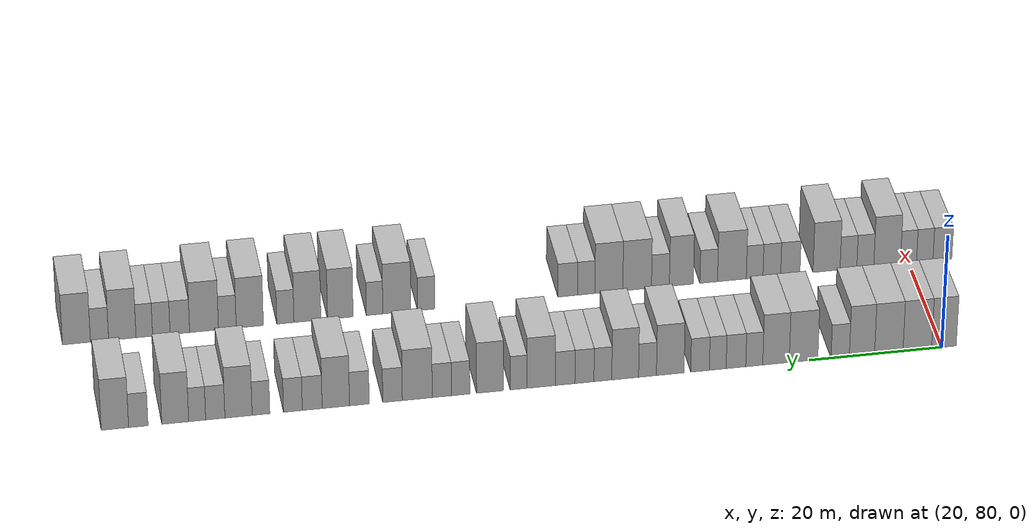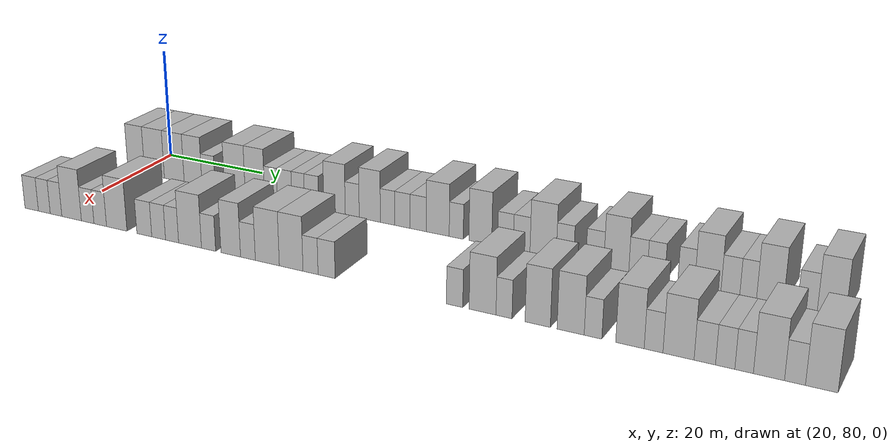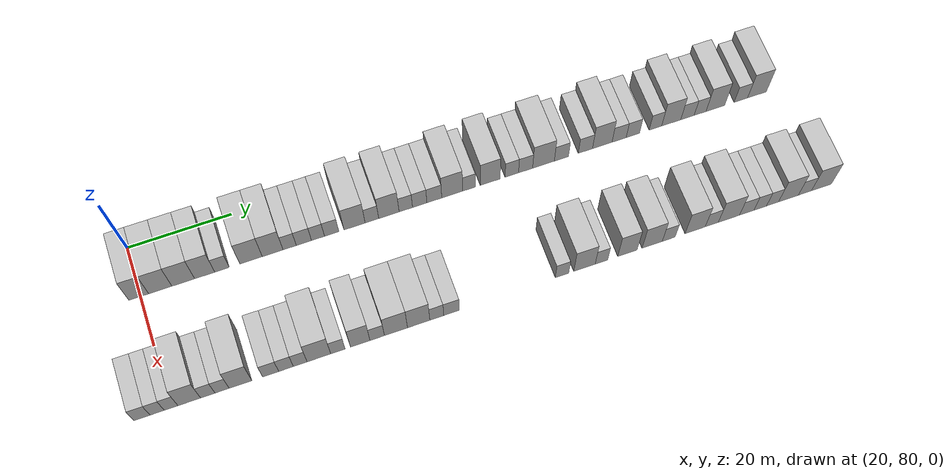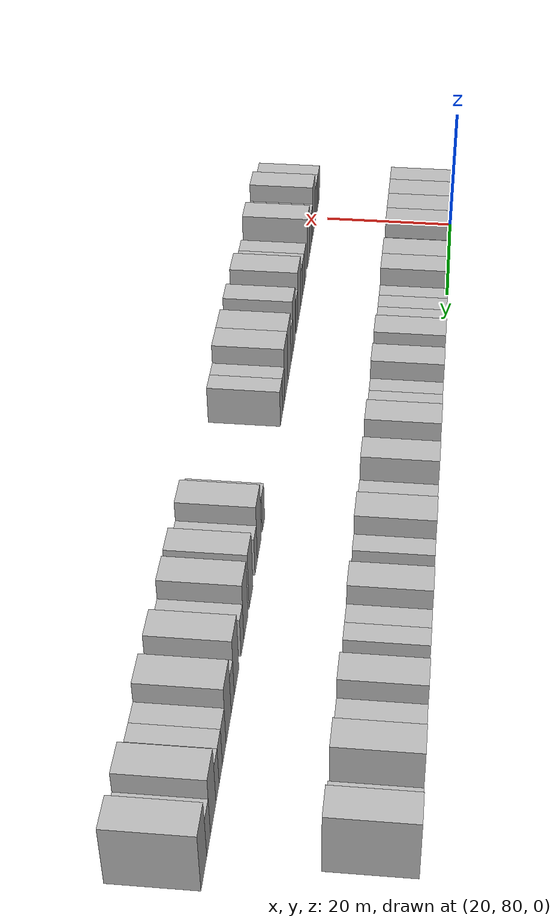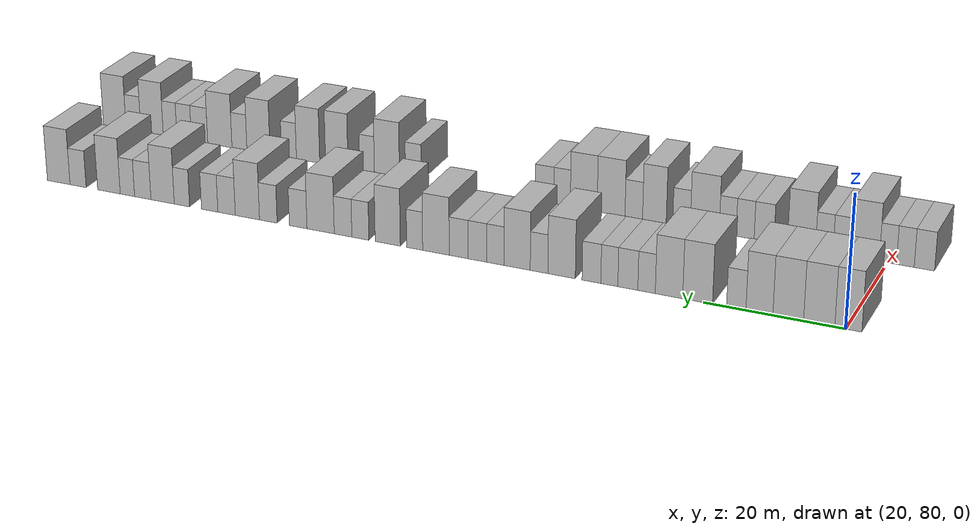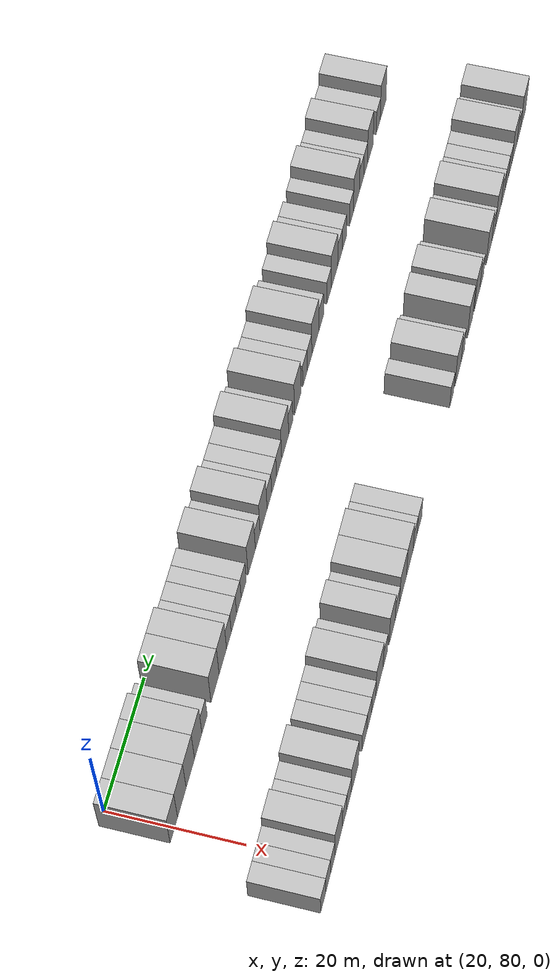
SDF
<sdf version="1.6">
 <world name="default">
  <model name="building_71">
   <static>1</static>
   <pose>25.0000 79.6886 0 0.000000 0.000000 0.000000</pose>
   <link name="link">
    <pose>0 0 4.50 0 0 0</pose>
    <collision name="collision"><geometry><box><size>10.0000 3.7195 9.0000</size></box></geometry></collision>
    <visual name="visual">
     <cast_shadows>0</cast_shadows>
     <geometry><box><size>10.0000 3.7195 9.0000</size></box></geometry>
     <material>
      <script>
       <uri>model://HANNAS_wall/materials/scripts</uri>
       <uri>model://HANNAS_wall/materials/textures</uri>
       <name>vrc/HANNAS_wall</name>
      </script>
     </material>
    </visual>
   </link>
  </model>
  <model name="building_72">
   <static>1</static>
   <pose>25.0000 83.7149 0 0.000000 0.000000 0.000000</pose>
   <link name="link">
    <pose>0 0 4.50 0 0 0</pose>
    <collision name="collision"><geometry><box><size>10.0000 4.3330 9.0000</size></box></geometry></collision>
    <visual name="visual">
     <cast_shadows>0</cast_shadows>
     <geometry><box><size>10.0000 4.3330 9.0000</size></box></geometry>
     <material>
      <script>
       <uri>model://HANNAS_wall/materials/scripts</uri>
       <uri>model://HANNAS_wall/materials/textures</uri>
       <name>vrc/HANNAS_wall</name>
      </script>
     </material>
    </visual>
   </link>
  </model>
  <model name="building_73">
   <static>1</static>
   <pose>25.0000 88.0286 0 0.000000 0.000000 0.000000</pose>
   <link name="link">
    <pose>0 0 4.50 0 0 0</pose>
    <collision name="collision"><geometry><box><size>10.0000 4.2945 9.0000</size></box></geometry></collision>
    <visual name="visual">
     <cast_shadows>0</cast_shadows>
     <geometry><box><size>10.0000 4.2945 9.0000</size></box></geometry>
     <material>
      <script>
       <uri>model://HANNAS_wall/materials/scripts</uri>
       <uri>model://HANNAS_wall/materials/textures</uri>
       <name>vrc/HANNAS_wall</name>
      </script>
     </material>
    </visual>
   </link>
  </model>
  <model name="building_74">
   <static>1</static>
   <pose>25.0000 92.0793 0 0.000000 0.000000 0.000000</pose>
   <link name="link">
    <pose>0 0 4.50 0 0 0</pose>
    <collision name="collision"><geometry><box><size>10.0000 3.8068 9.0000</size></box></geometry></collision>
    <visual name="visual">
     <cast_shadows>0</cast_shadows>
     <geometry><box><size>10.0000 3.8068 9.0000</size></box></geometry>
     <material>
      <script>
       <uri>model://HANNAS_wall/materials/scripts</uri>
       <uri>model://HANNAS_wall/materials/textures</uri>
       <name>vrc/HANNAS_wall</name>
      </script>
     </material>
    </visual>
   </link>
  </model>
  <model name="building_75">
   <static>1</static>
   <pose>25.0000 95.3599 0 0.000000 0.000000 0.000000</pose>
   <link name="link">
    <pose>0 0 3.00 0 0 0</pose>
    <collision name="collision"><geometry><box><size>10.0000 2.7545 6.0000</size></box></geometry></collision>
    <visual name="visual">
     <cast_shadows>0</cast_shadows>
     <geometry><box><size>10.0000 2.7545 6.0000</size></box></geometry>
     <material>
      <script>
       <uri>model://HANNAS_wall/materials/scripts</uri>
       <uri>model://HANNAS_wall/materials/textures</uri>
       <name>vrc/HANNAS_wall</name>
      </script>
     </material>
    </visual>
   </link>
  </model>
  <model name="building_76">
   <static>1</static>
   <pose>25.0000 100.8851 0 0.000000 0.000000 0.000000</pose>
   <link name="link">
    <pose>0 0 4.50 0 0 0</pose>
    <collision name="collision"><geometry><box><size>10.0000 4.2958 9.0000</size></box></geometry></collision>
    <visual name="visual">
     <cast_shadows>0</cast_shadows>
     <geometry><box><size>10.0000 4.2958 9.0000</size></box></geometry>
     <material>
      <script>
       <uri>model://HANNAS_wall/materials/scripts</uri>
       <uri>model://HANNAS_wall/materials/textures</uri>
       <name>vrc/HANNAS_wall</name>
      </script>
     </material>
    </visual>
   </link>
  </model>
  <model name="building_77">
   <static>1</static>
   <pose>25.0000 105.0226 0 0.000000 0.000000 0.000000</pose>
   <link name="link">
    <pose>0 0 4.50 0 0 0</pose>
    <collision name="collision"><geometry><box><size>10.0000 3.9792 9.0000</size></box></geometry></collision>
    <visual name="visual">
     <cast_shadows>0</cast_shadows>
     <geometry><box><size>10.0000 3.9792 9.0000</size></box></geometry>
     <material>
      <script>
       <uri>model://HANNAS_wall/materials/scripts</uri>
       <uri>model://HANNAS_wall/materials/textures</uri>
       <name>vrc/HANNAS_wall</name>
      </script>
     </material>
    </visual>
   </link>
  </model>
  <model name="building_78">
   <static>1</static>
   <pose>25.0000 108.2883 0 0.000000 0.000000 0.000000</pose>
   <link name="link">
    <pose>0 0 3.00 0 0 0</pose>
    <collision name="collision"><geometry><box><size>10.0000 2.5521 6.0000</size></box></geometry></collision>
    <visual name="visual">
     <cast_shadows>0</cast_shadows>
     <geometry><box><size>10.0000 2.5521 6.0000</size></box></geometry>
     <material>
      <script>
       <uri>model://HANNAS_wall/materials/scripts</uri>
       <uri>model://HANNAS_wall/materials/textures</uri>
       <name>vrc/HANNAS_wall</name>
      </script>
     </material>
    </visual>
   </link>
  </model>
  <model name="building_79">
   <static>1</static>
   <pose>25.0000 111.0295 0 0.000000 0.000000 0.000000</pose>
   <link name="link">
    <pose>0 0 3.00 0 0 0</pose>
    <collision name="collision"><geometry><box><size>10.0000 2.9303 6.0000</size></box></geometry></collision>
    <visual name="visual">
     <cast_shadows>0</cast_shadows>
     <geometry><box><size>10.0000 2.9303 6.0000</size></box></geometry>
     <material>
      <script>
       <uri>model://HANNAS_wall/materials/scripts</uri>
       <uri>model://HANNAS_wall/materials/textures</uri>
       <name>vrc/HANNAS_wall</name>
      </script>
     </material>
    </visual>
   </link>
  </model>
  <model name="building_80">
   <static>1</static>
   <pose>25.0000 113.7543 0 0.000000 0.000000 0.000000</pose>
   <link name="link">
    <pose>0 0 3.00 0 0 0</pose>
    <collision name="collision"><geometry><box><size>10.0000 2.5192 6.0000</size></box></geometry></collision>
    <visual name="visual">
     <cast_shadows>0</cast_shadows>
     <geometry><box><size>10.0000 2.5192 6.0000</size></box></geometry>
     <material>
      <script>
       <uri>model://HANNAS_wall/materials/scripts</uri>
       <uri>model://HANNAS_wall/materials/textures</uri>
       <name>vrc/HANNAS_wall</name>
      </script>
     </material>
    </visual>
   </link>
  </model>
  <model name="building_81">
   <static>1</static>
   <pose>25.0000 116.4075 0 0.000000 0.000000 0.000000</pose>
   <link name="link">
    <pose>0 0 3.00 0 0 0</pose>
    <collision name="collision"><geometry><box><size>10.0000 2.7872 6.0000</size></box></geometry></collision>
    <visual name="visual">
     <cast_shadows>0</cast_shadows>
     <geometry><box><size>10.0000 2.7872 6.0000</size></box></geometry>
     <material>
      <script>
       <uri>model://HANNAS_wall/materials/scripts</uri>
       <uri>model://HANNAS_wall/materials/textures</uri>
       <name>vrc/HANNAS_wall</name>
      </script>
     </material>
    </visual>
   </link>
  </model>
  <model name="building_82">
   <static>1</static>
   <pose>25.0000 120.8617 0 0.000000 0.000000 0.000000</pose>
   <link name="link">
    <pose>0 0 4.50 0 0 0</pose>
    <collision name="collision"><geometry><box><size>10.0000 4.1210 9.0000</size></box></geometry></collision>
    <visual name="visual">
     <cast_shadows>0</cast_shadows>
     <geometry><box><size>10.0000 4.1210 9.0000</size></box></geometry>
     <material>
      <script>
       <uri>model://HANNAS_wall/materials/scripts</uri>
       <uri>model://HANNAS_wall/materials/textures</uri>
       <name>vrc/HANNAS_wall</name>
      </script>
     </material>
    </visual>
   </link>
  </model>
  <model name="building_83">
   <static>1</static>
   <pose>25.0000 124.2535 0 0.000000 0.000000 0.000000</pose>
   <link name="link">
    <pose>0 0 3.00 0 0 0</pose>
    <collision name="collision"><geometry><box><size>10.0000 2.6628 6.0000</size></box></geometry></collision>
    <visual name="visual">
     <cast_shadows>0</cast_shadows>
     <geometry><box><size>10.0000 2.6628 6.0000</size></box></geometry>
     <material>
      <script>
       <uri>model://HANNAS_wall/materials/scripts</uri>
       <uri>model://HANNAS_wall/materials/textures</uri>
       <name>vrc/HANNAS_wall</name>
      </script>
     </material>
    </visual>
   </link>
  </model>
  <model name="building_84">
   <static>1</static>
   <pose>25.0000 127.5801 0 0.000000 0.000000 0.000000</pose>
   <link name="link">
    <pose>0 0 4.50 0 0 0</pose>
    <collision name="collision"><geometry><box><size>10.0000 3.9904 9.0000</size></box></geometry></collision>
    <visual name="visual">
     <cast_shadows>0</cast_shadows>
     <geometry><box><size>10.0000 3.9904 9.0000</size></box></geometry>
     <material>
      <script>
       <uri>model://HANNAS_wall/materials/scripts</uri>
       <uri>model://HANNAS_wall/materials/textures</uri>
       <name>vrc/HANNAS_wall</name>
      </script>
     </material>
    </visual>
   </link>
  </model>
  <model name="building_85">
   <static>1</static>
   <pose>25.0000 130.9005 0 0.000000 0.000000 0.000000</pose>
   <link name="link">
    <pose>0 0 3.00 0 0 0</pose>
    <collision name="collision"><geometry><box><size>10.0000 2.6504 6.0000</size></box></geometry></collision>
    <visual name="visual">
     <cast_shadows>0</cast_shadows>
     <geometry><box><size>10.0000 2.6504 6.0000</size></box></geometry>
     <material>
      <script>
       <uri>model://HANNAS_wall/materials/scripts</uri>
       <uri>model://HANNAS_wall/materials/textures</uri>
       <name>vrc/HANNAS_wall</name>
      </script>
     </material>
    </visual>
   </link>
  </model>
  <model name="building_86">
   <static>1</static>
   <pose>25.0000 133.6441 0 0.000000 0.000000 0.000000</pose>
   <link name="link">
    <pose>0 0 3.00 0 0 0</pose>
    <collision name="collision"><geometry><box><size>10.0000 2.8369 6.0000</size></box></geometry></collision>
    <visual name="visual">
     <cast_shadows>0</cast_shadows>
     <geometry><box><size>10.0000 2.8369 6.0000</size></box></geometry>
     <material>
      <script>
       <uri>model://HANNAS_wall/materials/scripts</uri>
       <uri>model://HANNAS_wall/materials/textures</uri>
       <name>vrc/HANNAS_wall</name>
      </script>
     </material>
    </visual>
   </link>
  </model>
  <model name="building_87">
   <static>1</static>
   <pose>25.0000 136.5326 0 0.000000 0.000000 0.000000</pose>
   <link name="link">
    <pose>0 0 3.00 0 0 0</pose>
    <collision name="collision"><geometry><box><size>10.0000 2.9401 6.0000</size></box></geometry></collision>
    <visual name="visual">
     <cast_shadows>0</cast_shadows>
     <geometry><box><size>10.0000 2.9401 6.0000</size></box></geometry>
     <material>
      <script>
       <uri>model://HANNAS_wall/materials/scripts</uri>
       <uri>model://HANNAS_wall/materials/textures</uri>
       <name>vrc/HANNAS_wall</name>
      </script>
     </material>
    </visual>
   </link>
  </model>
  <model name="building_88">
   <static>1</static>
   <pose>25.0000 140.0812 0 0.000000 0.000000 0.000000</pose>
   <link name="link">
    <pose>0 0 4.50 0 0 0</pose>
    <collision name="collision"><geometry><box><size>10.0000 4.1571 9.0000</size></box></geometry></collision>
    <visual name="visual">
     <cast_shadows>0</cast_shadows>
     <geometry><box><size>10.0000 4.1571 9.0000</size></box></geometry>
     <material>
      <script>
       <uri>model://HANNAS_wall/materials/scripts</uri>
       <uri>model://HANNAS_wall/materials/textures</uri>
       <name>vrc/HANNAS_wall</name>
      </script>
     </material>
    </visual>
   </link>
  </model>
  <model name="building_89">
   <static>1</static>
   <pose>25.0000 143.4136 0 0.000000 0.000000 0.000000</pose>
   <link name="link">
    <pose>0 0 3.00 0 0 0</pose>
    <collision name="collision"><geometry><box><size>10.0000 2.5076 6.0000</size></box></geometry></collision>
    <visual name="visual">
     <cast_shadows>0</cast_shadows>
     <geometry><box><size>10.0000 2.5076 6.0000</size></box></geometry>
     <material>
      <script>
       <uri>model://HANNAS_wall/materials/scripts</uri>
       <uri>model://HANNAS_wall/materials/textures</uri>
       <name>vrc/HANNAS_wall</name>
      </script>
     </material>
    </visual>
   </link>
  </model>
  <model name="building_90">
   <static>1</static>
   <pose>25.0000 147.6584 0 0.000000 0.000000 0.000000</pose>
   <link name="link">
    <pose>0 0 4.50 0 0 0</pose>
    <collision name="collision"><geometry><box><size>10.0000 3.9819 9.0000</size></box></geometry></collision>
    <visual name="visual">
     <cast_shadows>0</cast_shadows>
     <geometry><box><size>10.0000 3.9819 9.0000</size></box></geometry>
     <material>
      <script>
       <uri>model://HANNAS_wall/materials/scripts</uri>
       <uri>model://HANNAS_wall/materials/textures</uri>
       <name>vrc/HANNAS_wall</name>
      </script>
     </material>
    </visual>
   </link>
  </model>
  <model name="building_91">
   <static>1</static>
   <pose>25.0000 152.0112 0 0.000000 0.000000 0.000000</pose>
   <link name="link">
    <pose>0 0 3.00 0 0 0</pose>
    <collision name="collision"><geometry><box><size>10.0000 2.7238 6.0000</size></box></geometry></collision>
    <visual name="visual">
     <cast_shadows>0</cast_shadows>
     <geometry><box><size>10.0000 2.7238 6.0000</size></box></geometry>
     <material>
      <script>
       <uri>model://HANNAS_wall/materials/scripts</uri>
       <uri>model://HANNAS_wall/materials/textures</uri>
       <name>vrc/HANNAS_wall</name>
      </script>
     </material>
    </visual>
   </link>
  </model>
  <model name="building_92">
   <static>1</static>
   <pose>25.0000 154.7879 0 0.000000 0.000000 0.000000</pose>
   <link name="link">
    <pose>0 0 3.00 0 0 0</pose>
    <collision name="collision"><geometry><box><size>10.0000 2.8297 6.0000</size></box></geometry></collision>
    <visual name="visual">
     <cast_shadows>0</cast_shadows>
     <geometry><box><size>10.0000 2.8297 6.0000</size></box></geometry>
     <material>
      <script>
       <uri>model://HANNAS_wall/materials/scripts</uri>
       <uri>model://HANNAS_wall/materials/textures</uri>
       <name>vrc/HANNAS_wall</name>
      </script>
     </material>
    </visual>
   </link>
  </model>
  <model name="building_93">
   <static>1</static>
   <pose>25.0000 158.4090 0 0.000000 0.000000 0.000000</pose>
   <link name="link">
    <pose>0 0 4.50 0 0 0</pose>
    <collision name="collision"><geometry><box><size>10.0000 4.4125 9.0000</size></box></geometry></collision>
    <visual name="visual">
     <cast_shadows>0</cast_shadows>
     <geometry><box><size>10.0000 4.4125 9.0000</size></box></geometry>
     <material>
      <script>
       <uri>model://HANNAS_wall/materials/scripts</uri>
       <uri>model://HANNAS_wall/materials/textures</uri>
       <name>vrc/HANNAS_wall</name>
      </script>
     </material>
    </visual>
   </link>
  </model>
  <model name="building_94">
   <static>1</static>
   <pose>25.0000 162.0539 0 0.000000 0.000000 0.000000</pose>
   <link name="link">
    <pose>0 0 3.00 0 0 0</pose>
    <collision name="collision"><geometry><box><size>10.0000 2.8772 6.0000</size></box></geometry></collision>
    <visual name="visual">
     <cast_shadows>0</cast_shadows>
     <geometry><box><size>10.0000 2.8772 6.0000</size></box></geometry>
     <material>
      <script>
       <uri>model://HANNAS_wall/materials/scripts</uri>
       <uri>model://HANNAS_wall/materials/textures</uri>
       <name>vrc/HANNAS_wall</name>
      </script>
     </material>
    </visual>
   </link>
  </model>
  <model name="building_95">
   <static>1</static>
   <pose>25.0000 166.9425 0 0.000000 0.000000 0.000000</pose>
   <link name="link">
    <pose>0 0 3.00 0 0 0</pose>
    <collision name="collision"><geometry><box><size>10.0000 2.9001 6.0000</size></box></geometry></collision>
    <visual name="visual">
     <cast_shadows>0</cast_shadows>
     <geometry><box><size>10.0000 2.9001 6.0000</size></box></geometry>
     <material>
      <script>
       <uri>model://HANNAS_wall/materials/scripts</uri>
       <uri>model://HANNAS_wall/materials/textures</uri>
       <name>vrc/HANNAS_wall</name>
      </script>
     </material>
    </visual>
   </link>
  </model>
  <model name="building_96">
   <static>1</static>
   <pose>25.0000 170.4002 0 0.000000 0.000000 0.000000</pose>
   <link name="link">
    <pose>0 0 4.50 0 0 0</pose>
    <collision name="collision"><geometry><box><size>10.0000 4.0152 9.0000</size></box></geometry></collision>
    <visual name="visual">
     <cast_shadows>0</cast_shadows>
     <geometry><box><size>10.0000 4.0152 9.0000</size></box></geometry>
     <material>
      <script>
       <uri>model://HANNAS_wall/materials/scripts</uri>
       <uri>model://HANNAS_wall/materials/textures</uri>
       <name>vrc/HANNAS_wall</name>
      </script>
     </material>
    </visual>
   </link>
  </model>
  <model name="building_97">
   <static>1</static>
   <pose>25.0000 173.8634 0 0.000000 0.000000 0.000000</pose>
   <link name="link">
    <pose>0 0 3.00 0 0 0</pose>
    <collision name="collision"><geometry><box><size>10.0000 2.9112 6.0000</size></box></geometry></collision>
    <visual name="visual">
     <cast_shadows>0</cast_shadows>
     <geometry><box><size>10.0000 2.9112 6.0000</size></box></geometry>
     <material>
      <script>
       <uri>model://HANNAS_wall/materials/scripts</uri>
       <uri>model://HANNAS_wall/materials/textures</uri>
       <name>vrc/HANNAS_wall</name>
      </script>
     </material>
    </visual>
   </link>
  </model>
  <model name="building_98">
   <static>1</static>
   <pose>25.0000 176.6966 0 0.000000 0.000000 0.000000</pose>
   <link name="link">
    <pose>0 0 3.00 0 0 0</pose>
    <collision name="collision"><geometry><box><size>10.0000 2.7553 6.0000</size></box></geometry></collision>
    <visual name="visual">
     <cast_shadows>0</cast_shadows>
     <geometry><box><size>10.0000 2.7553 6.0000</size></box></geometry>
     <material>
      <script>
       <uri>model://HANNAS_wall/materials/scripts</uri>
       <uri>model://HANNAS_wall/materials/textures</uri>
       <name>vrc/HANNAS_wall</name>
      </script>
     </material>
    </visual>
   </link>
  </model>
  <model name="building_99">
   <static>1</static>
   <pose>25.0000 181.3711 0 0.000000 0.000000 0.000000</pose>
   <link name="link">
    <pose>0 0 3.00 0 0 0</pose>
    <collision name="collision"><geometry><box><size>10.0000 2.5936 6.0000</size></box></geometry></collision>
    <visual name="visual">
     <cast_shadows>0</cast_shadows>
     <geometry><box><size>10.0000 2.5936 6.0000</size></box></geometry>
     <material>
      <script>
       <uri>model://HANNAS_wall/materials/scripts</uri>
       <uri>model://HANNAS_wall/materials/textures</uri>
       <name>vrc/HANNAS_wall</name>
      </script>
     </material>
    </visual>
   </link>
  </model>
  <model name="building_100">
   <static>1</static>
   <pose>25.0000 184.6591 0 0.000000 0.000000 0.000000</pose>
   <link name="link">
    <pose>0 0 4.50 0 0 0</pose>
    <collision name="collision"><geometry><box><size>10.0000 3.9824 9.0000</size></box></geometry></collision>
    <visual name="visual">
     <cast_shadows>0</cast_shadows>
     <geometry><box><size>10.0000 3.9824 9.0000</size></box></geometry>
     <material>
      <script>
       <uri>model://HANNAS_wall/materials/scripts</uri>
       <uri>model://HANNAS_wall/materials/textures</uri>
       <name>vrc/HANNAS_wall</name>
      </script>
     </material>
    </visual>
   </link>
  </model>
  <model name="building_101">
   <static>1</static>
   <pose>25.0000 188.0536 0 0.000000 0.000000 0.000000</pose>
   <link name="link">
    <pose>0 0 3.00 0 0 0</pose>
    <collision name="collision"><geometry><box><size>10.0000 2.8066 6.0000</size></box></geometry></collision>
    <visual name="visual">
     <cast_shadows>0</cast_shadows>
     <geometry><box><size>10.0000 2.8066 6.0000</size></box></geometry>
     <material>
      <script>
       <uri>model://HANNAS_wall/materials/scripts</uri>
       <uri>model://HANNAS_wall/materials/textures</uri>
       <name>vrc/HANNAS_wall</name>
      </script>
     </material>
    </visual>
   </link>
  </model>
  <model name="building_102">
   <static>1</static>
   <pose>25.0000 190.6953 0 0.000000 0.000000 0.000000</pose>
   <link name="link">
    <pose>0 0 3.00 0 0 0</pose>
    <collision name="collision"><geometry><box><size>10.0000 2.4767 6.0000</size></box></geometry></collision>
    <visual name="visual">
     <cast_shadows>0</cast_shadows>
     <geometry><box><size>10.0000 2.4767 6.0000</size></box></geometry>
     <material>
      <script>
       <uri>model://HANNAS_wall/materials/scripts</uri>
       <uri>model://HANNAS_wall/materials/textures</uri>
       <name>vrc/HANNAS_wall</name>
      </script>
     </material>
    </visual>
   </link>
  </model>
  <model name="building_103">
   <static>1</static>
   <pose>25.0000 193.8942 0 0.000000 0.000000 0.000000</pose>
   <link name="link">
    <pose>0 0 4.50 0 0 0</pose>
    <collision name="collision"><geometry><box><size>10.0000 3.9211 9.0000</size></box></geometry></collision>
    <visual name="visual">
     <cast_shadows>0</cast_shadows>
     <geometry><box><size>10.0000 3.9211 9.0000</size></box></geometry>
     <material>
      <script>
       <uri>model://HANNAS_wall/materials/scripts</uri>
       <uri>model://HANNAS_wall/materials/textures</uri>
       <name>vrc/HANNAS_wall</name>
      </script>
     </material>
    </visual>
   </link>
  </model>
  <model name="building_104">
   <static>1</static>
   <pose>25.0000 199.2703 0 0.000000 0.000000 0.000000</pose>
   <link name="link">
    <pose>0 0 3.00 0 0 0</pose>
    <collision name="collision"><geometry><box><size>10.0000 2.8310 6.0000</size></box></geometry></collision>
    <visual name="visual">
     <cast_shadows>0</cast_shadows>
     <geometry><box><size>10.0000 2.8310 6.0000</size></box></geometry>
     <material>
      <script>
       <uri>model://HANNAS_wall/materials/scripts</uri>
       <uri>model://HANNAS_wall/materials/textures</uri>
       <name>vrc/HANNAS_wall</name>
      </script>
     </material>
    </visual>
   </link>
  </model>
  <model name="building_105">
   <static>1</static>
   <pose>25.0000 202.6778 0 0.000000 0.000000 0.000000</pose>
   <link name="link">
    <pose>0 0 4.50 0 0 0</pose>
    <collision name="collision"><geometry><box><size>10.0000 3.9841 9.0000</size></box></geometry></collision>
    <visual name="visual">
     <cast_shadows>0</cast_shadows>
     <geometry><box><size>10.0000 3.9841 9.0000</size></box></geometry>
     <material>
      <script>
       <uri>model://HANNAS_wall/materials/scripts</uri>
       <uri>model://HANNAS_wall/materials/textures</uri>
       <name>vrc/HANNAS_wall</name>
      </script>
     </material>
    </visual>
   </link>
  </model>
  <model name="building_170">
   <static>1</static>
   <pose>47.0000 74.7722 0 0.000000 0.000000 0.000000</pose>
   <link name="link">
    <pose>0 0 3.00 0 0 0</pose>
    <collision name="collision"><geometry><box><size>10.0000 2.9110 6.0000</size></box></geometry></collision>
    <visual name="visual">
     <cast_shadows>0</cast_shadows>
     <geometry><box><size>10.0000 2.9110 6.0000</size></box></geometry>
     <material>
      <script>
       <uri>model://HANNAS_wall/materials/scripts</uri>
       <uri>model://HANNAS_wall/materials/textures</uri>
       <name>vrc/HANNAS_wall</name>
      </script>
     </material>
    </visual>
   </link>
  </model>
  <model name="building_171">
   <static>1</static>
   <pose>47.0000 77.5032 0 0.000000 0.000000 0.000000</pose>
   <link name="link">
    <pose>0 0 3.00 0 0 0</pose>
    <collision name="collision"><geometry><box><size>10.0000 2.5510 6.0000</size></box></geometry></collision>
    <visual name="visual">
     <cast_shadows>0</cast_shadows>
     <geometry><box><size>10.0000 2.5510 6.0000</size></box></geometry>
     <material>
      <script>
       <uri>model://HANNAS_wall/materials/scripts</uri>
       <uri>model://HANNAS_wall/materials/textures</uri>
       <name>vrc/HANNAS_wall</name>
      </script>
     </material>
    </visual>
   </link>
  </model>
  <model name="building_172">
   <static>1</static>
   <pose>47.0000 80.0175 0 0.000000 0.000000 0.000000</pose>
   <link name="link">
    <pose>0 0 3.00 0 0 0</pose>
    <collision name="collision"><geometry><box><size>10.0000 2.4777 6.0000</size></box></geometry></collision>
    <visual name="visual">
     <cast_shadows>0</cast_shadows>
     <geometry><box><size>10.0000 2.4777 6.0000</size></box></geometry>
     <material>
      <script>
       <uri>model://HANNAS_wall/materials/scripts</uri>
       <uri>model://HANNAS_wall/materials/textures</uri>
       <name>vrc/HANNAS_wall</name>
      </script>
     </material>
    </visual>
   </link>
  </model>
  <model name="building_173">
   <static>1</static>
   <pose>47.0000 83.3180 0 0.000000 0.000000 0.000000</pose>
   <link name="link">
    <pose>0 0 4.50 0 0 0</pose>
    <collision name="collision"><geometry><box><size>10.0000 4.1231 9.0000</size></box></geometry></collision>
    <visual name="visual">
     <cast_shadows>0</cast_shadows>
     <geometry><box><size>10.0000 4.1231 9.0000</size></box></geometry>
     <material>
      <script>
       <uri>model://HANNAS_wall/materials/scripts</uri>
       <uri>model://HANNAS_wall/materials/textures</uri>
       <name>vrc/HANNAS_wall</name>
      </script>
     </material>
    </visual>
   </link>
  </model>
  <model name="building_174">
   <static>1</static>
   <pose>47.0000 86.6889 0 0.000000 0.000000 0.000000</pose>
   <link name="link">
    <pose>0 0 3.00 0 0 0</pose>
    <collision name="collision"><geometry><box><size>10.0000 2.6188 6.0000</size></box></geometry></collision>
    <visual name="visual">
     <cast_shadows>0</cast_shadows>
     <geometry><box><size>10.0000 2.6188 6.0000</size></box></geometry>
     <material>
      <script>
       <uri>model://HANNAS_wall/materials/scripts</uri>
       <uri>model://HANNAS_wall/materials/textures</uri>
       <name>vrc/HANNAS_wall</name>
      </script>
     </material>
    </visual>
   </link>
  </model>
  <model name="building_175">
   <static>1</static>
   <pose>47.0000 89.2907 0 0.000000 0.000000 0.000000</pose>
   <link name="link">
    <pose>0 0 3.00 0 0 0</pose>
    <collision name="collision"><geometry><box><size>10.0000 2.5848 6.0000</size></box></geometry></collision>
    <visual name="visual">
     <cast_shadows>0</cast_shadows>
     <geometry><box><size>10.0000 2.5848 6.0000</size></box></geometry>
     <material>
      <script>
       <uri>model://HANNAS_wall/materials/scripts</uri>
       <uri>model://HANNAS_wall/materials/textures</uri>
       <name>vrc/HANNAS_wall</name>
      </script>
     </material>
    </visual>
   </link>
  </model>
  <model name="building_176">
   <static>1</static>
   <pose>47.0000 92.6688 0 0.000000 0.000000 0.000000</pose>
   <link name="link">
    <pose>0 0 4.50 0 0 0</pose>
    <collision name="collision"><geometry><box><size>10.0000 4.1715 9.0000</size></box></geometry></collision>
    <visual name="visual">
     <cast_shadows>0</cast_shadows>
     <geometry><box><size>10.0000 4.1715 9.0000</size></box></geometry>
     <material>
      <script>
       <uri>model://HANNAS_wall/materials/scripts</uri>
       <uri>model://HANNAS_wall/materials/textures</uri>
       <name>vrc/HANNAS_wall</name>
      </script>
     </material>
    </visual>
   </link>
  </model>
  <model name="building_177">
   <static>1</static>
   <pose>47.0000 98.2374 0 0.000000 0.000000 0.000000</pose>
   <link name="link">
    <pose>0 0 3.00 0 0 0</pose>
    <collision name="collision"><geometry><box><size>10.0000 2.9658 6.0000</size></box></geometry></collision>
    <visual name="visual">
     <cast_shadows>0</cast_shadows>
     <geometry><box><size>10.0000 2.9658 6.0000</size></box></geometry>
     <material>
      <script>
       <uri>model://HANNAS_wall/materials/scripts</uri>
       <uri>model://HANNAS_wall/materials/textures</uri>
       <name>vrc/HANNAS_wall</name>
      </script>
     </material>
    </visual>
   </link>
  </model>
  <model name="building_178">
   <static>1</static>
   <pose>47.0000 101.0815 0 0.000000 0.000000 0.000000</pose>
   <link name="link">
    <pose>0 0 3.00 0 0 0</pose>
    <collision name="collision"><geometry><box><size>10.0000 2.7223 6.0000</size></box></geometry></collision>
    <visual name="visual">
     <cast_shadows>0</cast_shadows>
     <geometry><box><size>10.0000 2.7223 6.0000</size></box></geometry>
     <material>
      <script>
       <uri>model://HANNAS_wall/materials/scripts</uri>
       <uri>model://HANNAS_wall/materials/textures</uri>
       <name>vrc/HANNAS_wall</name>
      </script>
     </material>
    </visual>
   </link>
  </model>
  <model name="building_179">
   <static>1</static>
   <pose>47.0000 103.7174 0 0.000000 0.000000 0.000000</pose>
   <link name="link">
    <pose>0 0 3.00 0 0 0</pose>
    <collision name="collision"><geometry><box><size>10.0000 2.5495 6.0000</size></box></geometry></collision>
    <visual name="visual">
     <cast_shadows>0</cast_shadows>
     <geometry><box><size>10.0000 2.5495 6.0000</size></box></geometry>
     <material>
      <script>
       <uri>model://HANNAS_wall/materials/scripts</uri>
       <uri>model://HANNAS_wall/materials/textures</uri>
       <name>vrc/HANNAS_wall</name>
      </script>
     </material>
    </visual>
   </link>
  </model>
  <model name="building_180">
   <static>1</static>
   <pose>47.0000 107.1999 0 0.000000 0.000000 0.000000</pose>
   <link name="link">
    <pose>0 0 4.50 0 0 0</pose>
    <collision name="collision"><geometry><box><size>10.0000 4.4154 9.0000</size></box></geometry></collision>
    <visual name="visual">
     <cast_shadows>0</cast_shadows>
     <geometry><box><size>10.0000 4.4154 9.0000</size></box></geometry>
     <material>
      <script>
       <uri>model://HANNAS_wall/materials/scripts</uri>
       <uri>model://HANNAS_wall/materials/textures</uri>
       <name>vrc/HANNAS_wall</name>
      </script>
     </material>
    </visual>
   </link>
  </model>
  <model name="building_181">
   <static>1</static>
   <pose>47.0000 110.7553 0 0.000000 0.000000 0.000000</pose>
   <link name="link">
    <pose>0 0 3.00 0 0 0</pose>
    <collision name="collision"><geometry><box><size>10.0000 2.6955 6.0000</size></box></geometry></collision>
    <visual name="visual">
     <cast_shadows>0</cast_shadows>
     <geometry><box><size>10.0000 2.6955 6.0000</size></box></geometry>
     <material>
      <script>
       <uri>model://HANNAS_wall/materials/scripts</uri>
       <uri>model://HANNAS_wall/materials/textures</uri>
       <name>vrc/HANNAS_wall</name>
      </script>
     </material>
    </visual>
   </link>
  </model>
  <model name="building_182">
   <static>1</static>
   <pose>47.0000 114.9359 0 0.000000 0.000000 0.000000</pose>
   <link name="link">
    <pose>0 0 4.50 0 0 0</pose>
    <collision name="collision"><geometry><box><size>10.0000 3.6656 9.0000</size></box></geometry></collision>
    <visual name="visual">
     <cast_shadows>0</cast_shadows>
     <geometry><box><size>10.0000 3.6656 9.0000</size></box></geometry>
     <material>
      <script>
       <uri>model://HANNAS_wall/materials/scripts</uri>
       <uri>model://HANNAS_wall/materials/textures</uri>
       <name>vrc/HANNAS_wall</name>
      </script>
     </material>
    </visual>
   </link>
  </model>
  <model name="building_183">
   <static>1</static>
   <pose>47.0000 118.1361 0 0.000000 0.000000 0.000000</pose>
   <link name="link">
    <pose>0 0 3.00 0 0 0</pose>
    <collision name="collision"><geometry><box><size>10.0000 2.7348 6.0000</size></box></geometry></collision>
    <visual name="visual">
     <cast_shadows>0</cast_shadows>
     <geometry><box><size>10.0000 2.7348 6.0000</size></box></geometry>
     <material>
      <script>
       <uri>model://HANNAS_wall/materials/scripts</uri>
       <uri>model://HANNAS_wall/materials/textures</uri>
       <name>vrc/HANNAS_wall</name>
      </script>
     </material>
    </visual>
   </link>
  </model>
  <model name="building_184">
   <static>1</static>
   <pose>47.0000 121.6915 0 0.000000 0.000000 0.000000</pose>
   <link name="link">
    <pose>0 0 4.50 0 0 0</pose>
    <collision name="collision"><geometry><box><size>10.0000 4.3759 9.0000</size></box></geometry></collision>
    <visual name="visual">
     <cast_shadows>0</cast_shadows>
     <geometry><box><size>10.0000 4.3759 9.0000</size></box></geometry>
     <material>
      <script>
       <uri>model://HANNAS_wall/materials/scripts</uri>
       <uri>model://HANNAS_wall/materials/textures</uri>
       <name>vrc/HANNAS_wall</name>
      </script>
     </material>
    </visual>
   </link>
  </model>
  <model name="building_185">
   <static>1</static>
   <pose>47.0000 126.0021 0 0.000000 0.000000 0.000000</pose>
   <link name="link">
    <pose>0 0 4.50 0 0 0</pose>
    <collision name="collision"><geometry><box><size>10.0000 4.2453 9.0000</size></box></geometry></collision>
    <visual name="visual">
     <cast_shadows>0</cast_shadows>
     <geometry><box><size>10.0000 4.2453 9.0000</size></box></geometry>
     <material>
      <script>
       <uri>model://HANNAS_wall/materials/scripts</uri>
       <uri>model://HANNAS_wall/materials/textures</uri>
       <name>vrc/HANNAS_wall</name>
      </script>
     </material>
    </visual>
   </link>
  </model>
  <model name="building_186">
   <static>1</static>
   <pose>47.0000 129.4540 0 0.000000 0.000000 0.000000</pose>
   <link name="link">
    <pose>0 0 3.00 0 0 0</pose>
    <collision name="collision"><geometry><box><size>10.0000 2.6586 6.0000</size></box></geometry></collision>
    <visual name="visual">
     <cast_shadows>0</cast_shadows>
     <geometry><box><size>10.0000 2.6586 6.0000</size></box></geometry>
     <material>
      <script>
       <uri>model://HANNAS_wall/materials/scripts</uri>
       <uri>model://HANNAS_wall/materials/textures</uri>
       <name>vrc/HANNAS_wall</name>
      </script>
     </material>
    </visual>
   </link>
  </model>
  <model name="building_187">
   <static>1</static>
   <pose>47.0000 132.2734 0 0.000000 0.000000 0.000000</pose>
   <link name="link">
    <pose>0 0 3.00 0 0 0</pose>
    <collision name="collision"><geometry><box><size>10.0000 2.9801 6.0000</size></box></geometry></collision>
    <visual name="visual">
     <cast_shadows>0</cast_shadows>
     <geometry><box><size>10.0000 2.9801 6.0000</size></box></geometry>
     <material>
      <script>
       <uri>model://HANNAS_wall/materials/scripts</uri>
       <uri>model://HANNAS_wall/materials/textures</uri>
       <name>vrc/HANNAS_wall</name>
      </script>
     </material>
    </visual>
   </link>
  </model>
  <model name="building_188">
   <static>1</static>
   <pose>47.0000 153.6985 0 0.000000 0.000000 0.000000</pose>
   <link name="link">
    <pose>0 0 3.00 0 0 0</pose>
    <collision name="collision"><geometry><box><size>10.0000 2.6234 6.0000</size></box></geometry></collision>
    <visual name="visual">
     <cast_shadows>0</cast_shadows>
     <geometry><box><size>10.0000 2.6234 6.0000</size></box></geometry>
     <material>
      <script>
       <uri>model://HANNAS_wall/materials/scripts</uri>
       <uri>model://HANNAS_wall/materials/textures</uri>
       <name>vrc/HANNAS_wall</name>
      </script>
     </material>
    </visual>
   </link>
  </model>
  <model name="building_189">
   <static>1</static>
   <pose>47.0000 158.1203 0 0.000000 0.000000 0.000000</pose>
   <link name="link">
    <pose>0 0 4.50 0 0 0</pose>
    <collision name="collision"><geometry><box><size>10.0000 4.2202 9.0000</size></box></geometry></collision>
    <visual name="visual">
     <cast_shadows>0</cast_shadows>
     <geometry><box><size>10.0000 4.2202 9.0000</size></box></geometry>
     <material>
      <script>
       <uri>model://HANNAS_wall/materials/scripts</uri>
       <uri>model://HANNAS_wall/materials/textures</uri>
       <name>vrc/HANNAS_wall</name>
      </script>
     </material>
    </visual>
   </link>
  </model>
  <model name="building_190">
   <static>1</static>
   <pose>47.0000 161.4702 0 0.000000 0.000000 0.000000</pose>
   <link name="link">
    <pose>0 0 3.00 0 0 0</pose>
    <collision name="collision"><geometry><box><size>10.0000 2.4797 6.0000</size></box></geometry></collision>
    <visual name="visual">
     <cast_shadows>0</cast_shadows>
     <geometry><box><size>10.0000 2.4797 6.0000</size></box></geometry>
     <material>
      <script>
       <uri>model://HANNAS_wall/materials/scripts</uri>
       <uri>model://HANNAS_wall/materials/textures</uri>
       <name>vrc/HANNAS_wall</name>
      </script>
     </material>
    </visual>
   </link>
  </model>
  <model name="building_191">
   <static>1</static>
   <pose>47.0000 166.6292 0 0.000000 0.000000 0.000000</pose>
   <link name="link">
    <pose>0 0 4.50 0 0 0</pose>
    <collision name="collision"><geometry><box><size>10.0000 3.8381 9.0000</size></box></geometry></collision>
    <visual name="visual">
     <cast_shadows>0</cast_shadows>
     <geometry><box><size>10.0000 3.8381 9.0000</size></box></geometry>
     <material>
      <script>
       <uri>model://HANNAS_wall/materials/scripts</uri>
       <uri>model://HANNAS_wall/materials/textures</uri>
       <name>vrc/HANNAS_wall</name>
      </script>
     </material>
    </visual>
   </link>
  </model>
  <model name="building_192">
   <static>1</static>
   <pose>47.0000 171.5664 0 0.000000 0.000000 0.000000</pose>
   <link name="link">
    <pose>0 0 4.50 0 0 0</pose>
    <collision name="collision"><geometry><box><size>10.0000 4.0364 9.0000</size></box></geometry></collision>
    <visual name="visual">
     <cast_shadows>0</cast_shadows>
     <geometry><box><size>10.0000 4.0364 9.0000</size></box></geometry>
     <material>
      <script>
       <uri>model://HANNAS_wall/materials/scripts</uri>
       <uri>model://HANNAS_wall/materials/textures</uri>
       <name>vrc/HANNAS_wall</name>
      </script>
     </material>
    </visual>
   </link>
  </model>
  <model name="building_193">
   <static>1</static>
   <pose>47.0000 174.8742 0 0.000000 0.000000 0.000000</pose>
   <link name="link">
    <pose>0 0 3.00 0 0 0</pose>
    <collision name="collision"><geometry><box><size>10.0000 2.5793 6.0000</size></box></geometry></collision>
    <visual name="visual">
     <cast_shadows>0</cast_shadows>
     <geometry><box><size>10.0000 2.5793 6.0000</size></box></geometry>
     <material>
      <script>
       <uri>model://HANNAS_wall/materials/scripts</uri>
       <uri>model://HANNAS_wall/materials/textures</uri>
       <name>vrc/HANNAS_wall</name>
      </script>
     </material>
    </visual>
   </link>
  </model>
  <model name="building_194">
   <static>1</static>
   <pose>47.0000 180.1961 0 0.000000 0.000000 0.000000</pose>
   <link name="link">
    <pose>0 0 4.50 0 0 0</pose>
    <collision name="collision"><geometry><box><size>10.0000 4.0644 9.0000</size></box></geometry></collision>
    <visual name="visual">
     <cast_shadows>0</cast_shadows>
     <geometry><box><size>10.0000 4.0644 9.0000</size></box></geometry>
     <material>
      <script>
       <uri>model://HANNAS_wall/materials/scripts</uri>
       <uri>model://HANNAS_wall/materials/textures</uri>
       <name>vrc/HANNAS_wall</name>
      </script>
     </material>
    </visual>
   </link>
  </model>
  <model name="building_195">
   <static>1</static>
   <pose>47.0000 183.5521 0 0.000000 0.000000 0.000000</pose>
   <link name="link">
    <pose>0 0 3.00 0 0 0</pose>
    <collision name="collision"><geometry><box><size>10.0000 2.6477 6.0000</size></box></geometry></collision>
    <visual name="visual">
     <cast_shadows>0</cast_shadows>
     <geometry><box><size>10.0000 2.6477 6.0000</size></box></geometry>
     <material>
      <script>
       <uri>model://HANNAS_wall/materials/scripts</uri>
       <uri>model://HANNAS_wall/materials/textures</uri>
       <name>vrc/HANNAS_wall</name>
      </script>
     </material>
    </visual>
   </link>
  </model>
  <model name="building_196">
   <static>1</static>
   <pose>47.0000 187.0314 0 0.000000 0.000000 0.000000</pose>
   <link name="link">
    <pose>0 0 4.50 0 0 0</pose>
    <collision name="collision"><geometry><box><size>10.0000 4.3109 9.0000</size></box></geometry></collision>
    <visual name="visual">
     <cast_shadows>0</cast_shadows>
     <geometry><box><size>10.0000 4.3109 9.0000</size></box></geometry>
     <material>
      <script>
       <uri>model://HANNAS_wall/materials/scripts</uri>
       <uri>model://HANNAS_wall/materials/textures</uri>
       <name>vrc/HANNAS_wall</name>
      </script>
     </material>
    </visual>
   </link>
  </model>
  <model name="building_197">
   <static>1</static>
   <pose>47.0000 190.6474 0 0.000000 0.000000 0.000000</pose>
   <link name="link">
    <pose>0 0 3.00 0 0 0</pose>
    <collision name="collision"><geometry><box><size>10.0000 2.9210 6.0000</size></box></geometry></collision>
    <visual name="visual">
     <cast_shadows>0</cast_shadows>
     <geometry><box><size>10.0000 2.9210 6.0000</size></box></geometry>
     <material>
      <script>
       <uri>model://HANNAS_wall/materials/scripts</uri>
       <uri>model://HANNAS_wall/materials/textures</uri>
       <name>vrc/HANNAS_wall</name>
      </script>
     </material>
    </visual>
   </link>
  </model>
  <model name="building_198">
   <static>1</static>
   <pose>47.0000 193.4092 0 0.000000 0.000000 0.000000</pose>
   <link name="link">
    <pose>0 0 3.00 0 0 0</pose>
    <collision name="collision"><geometry><box><size>10.0000 2.6026 6.0000</size></box></geometry></collision>
    <visual name="visual">
     <cast_shadows>0</cast_shadows>
     <geometry><box><size>10.0000 2.6026 6.0000</size></box></geometry>
     <material>
      <script>
       <uri>model://HANNAS_wall/materials/scripts</uri>
       <uri>model://HANNAS_wall/materials/textures</uri>
       <name>vrc/HANNAS_wall</name>
      </script>
     </material>
    </visual>
   </link>
  </model>
  <model name="building_199">
   <static>1</static>
   <pose>47.0000 195.9416 0 0.000000 0.000000 0.000000</pose>
   <link name="link">
    <pose>0 0 3.00 0 0 0</pose>
    <collision name="collision"><geometry><box><size>10.0000 2.4621 6.0000</size></box></geometry></collision>
    <visual name="visual">
     <cast_shadows>0</cast_shadows>
     <geometry><box><size>10.0000 2.4621 6.0000</size></box></geometry>
     <material>
      <script>
       <uri>model://HANNAS_wall/materials/scripts</uri>
       <uri>model://HANNAS_wall/materials/textures</uri>
       <name>vrc/HANNAS_wall</name>
      </script>
     </material>
    </visual>
   </link>
  </model>
  <model name="building_200">
   <static>1</static>
   <pose>47.0000 199.2118 0 0.000000 0.000000 0.000000</pose>
   <link name="link">
    <pose>0 0 4.50 0 0 0</pose>
    <collision name="collision"><geometry><box><size>10.0000 4.0782 9.0000</size></box></geometry></collision>
    <visual name="visual">
     <cast_shadows>0</cast_shadows>
     <geometry><box><size>10.0000 4.0782 9.0000</size></box></geometry>
     <material>
      <script>
       <uri>model://HANNAS_wall/materials/scripts</uri>
       <uri>model://HANNAS_wall/materials/textures</uri>
       <name>vrc/HANNAS_wall</name>
      </script>
     </material>
    </visual>
   </link>
  </model>
  <model name="building_201">
   <static>1</static>
   <pose>47.0000 202.6022 0 0.000000 0.000000 0.000000</pose>
   <link name="link">
    <pose>0 0 3.00 0 0 0</pose>
    <collision name="collision"><geometry><box><size>10.0000 2.7027 6.0000</size></box></geometry></collision>
    <visual name="visual">
     <cast_shadows>0</cast_shadows>
     <geometry><box><size>10.0000 2.7027 6.0000</size></box></geometry>
     <material>
      <script>
       <uri>model://HANNAS_wall/materials/scripts</uri>
       <uri>model://HANNAS_wall/materials/textures</uri>
       <name>vrc/HANNAS_wall</name>
      </script>
     </material>
    </visual>
   </link>
  </model>
  <model name="building_202">
   <static>1</static>
   <pose>47.0000 206.0274 0 0.000000 0.000000 0.000000</pose>
   <link name="link">
    <pose>0 0 4.50 0 0 0</pose>
    <collision name="collision"><geometry><box><size>10.0000 4.1476 9.0000</size></box></geometry></collision>
    <visual name="visual">
     <cast_shadows>0</cast_shadows>
     <geometry><box><size>10.0000 4.1476 9.0000</size></box></geometry>
     <material>
      <script>
       <uri>model://HANNAS_wall/materials/scripts</uri>
       <uri>model://HANNAS_wall/materials/textures</uri>
       <name>vrc/HANNAS_wall</name>
      </script>
     </material>
    </visual>
   </link>
  </model>
 </world>
</sdf>
